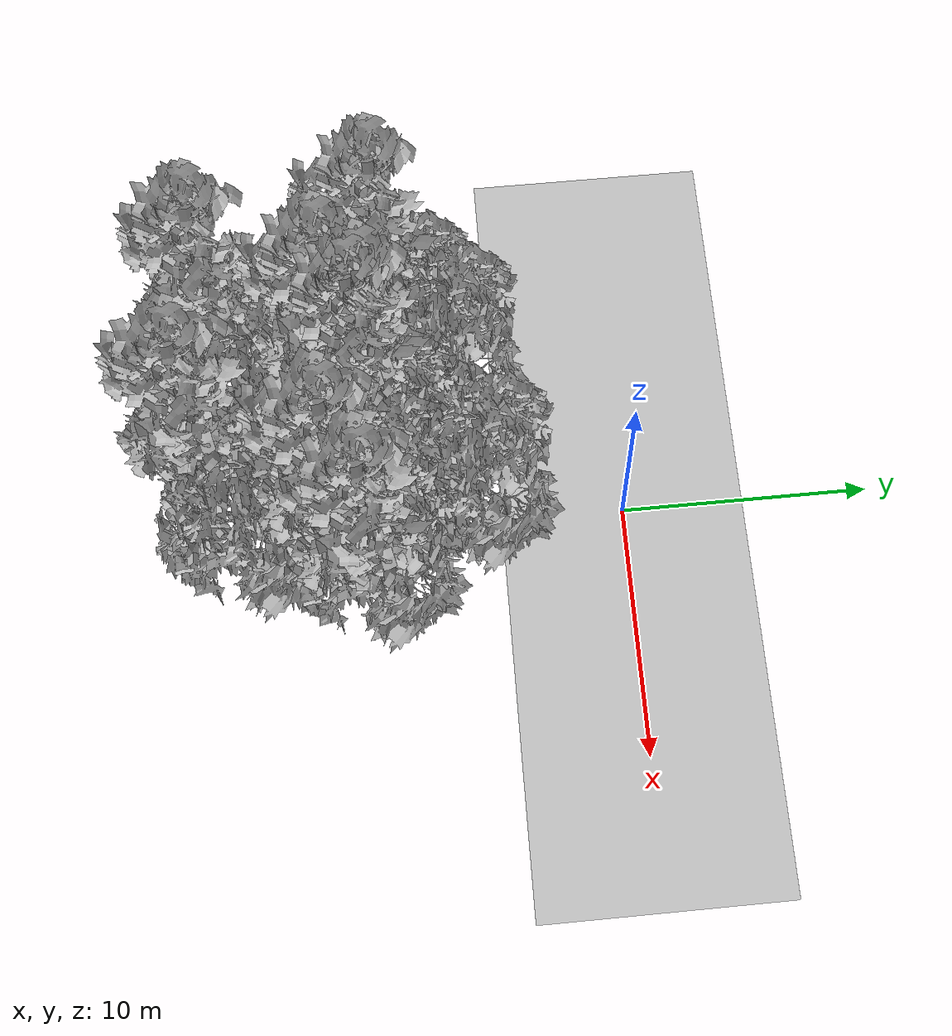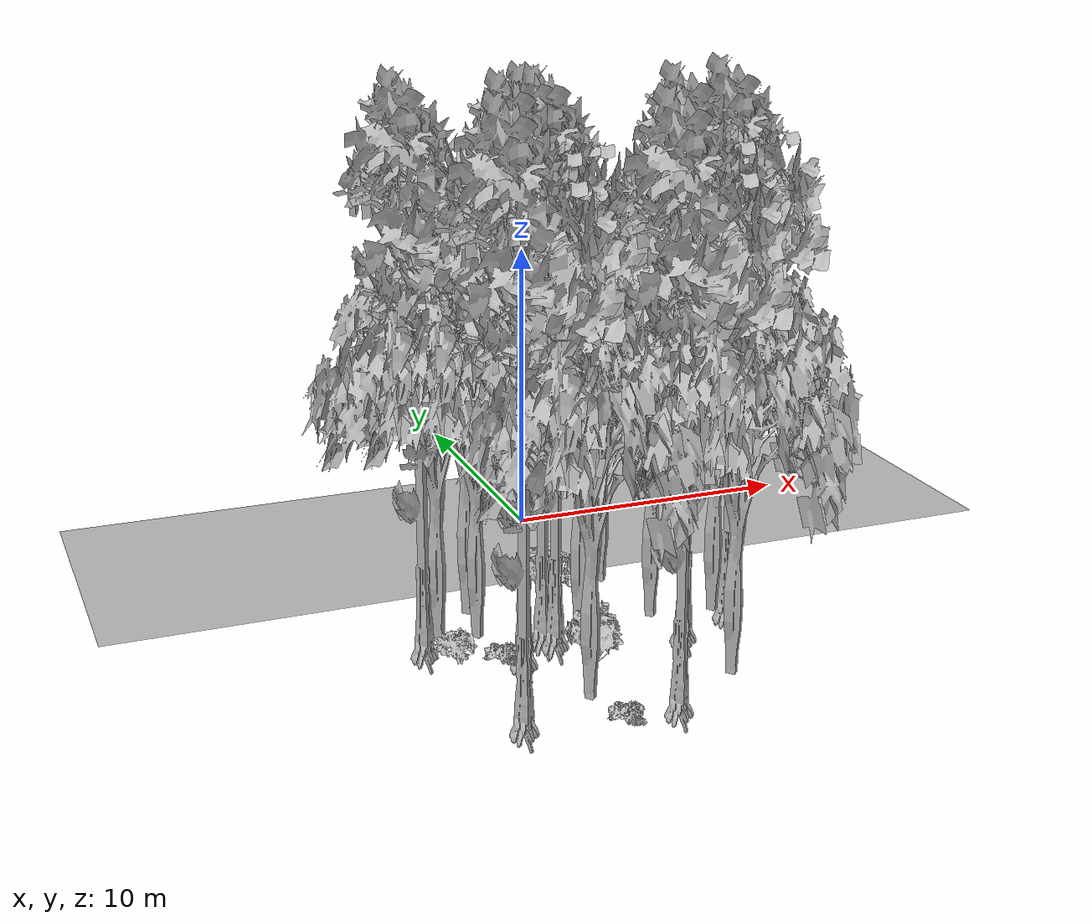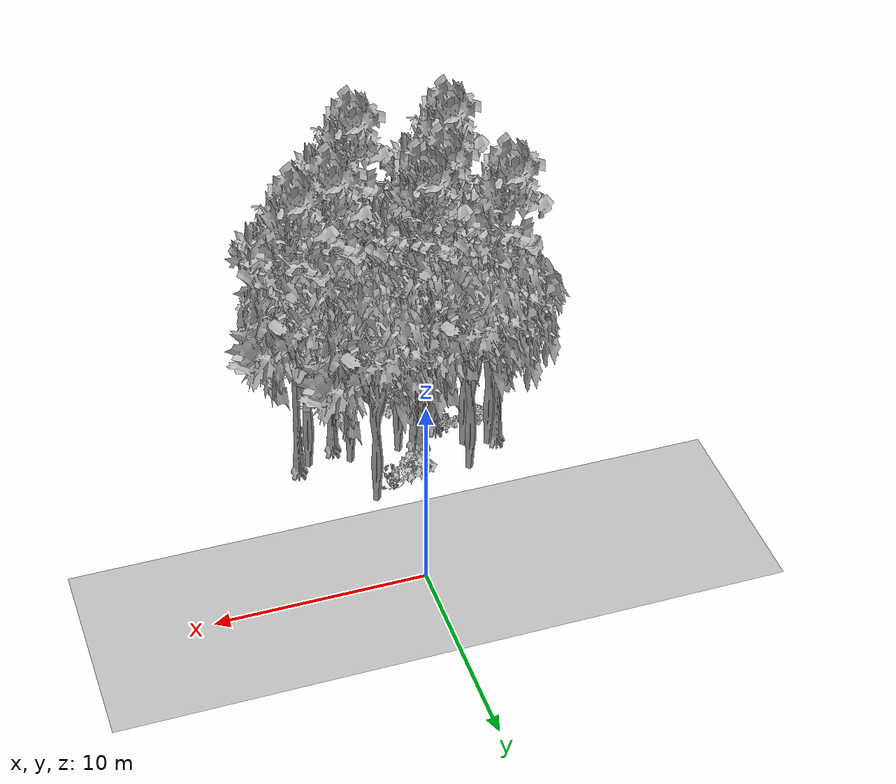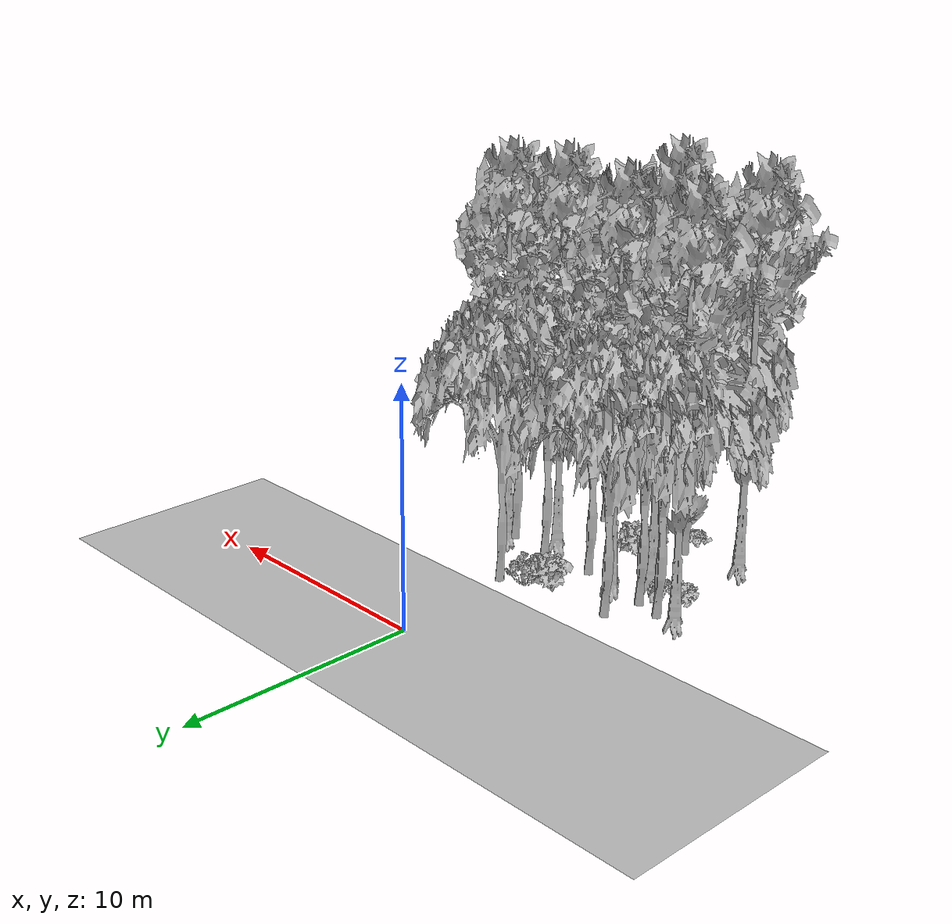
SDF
<sdf version="1.7">
 <world name="default">
  <model name="ground_plane">
   <static>1</static>
   <link name="link">
    <collision name="collision">
     <geometry><plane><normal>0 0 1</normal><size>100 100</size></plane></geometry>
     <surface><contact><ode><min_depth>0.01</min_depth><max_vel>0</max_vel></ode></contact></surface>
    </collision>
    <visual name="grass">
     <cast_shadows>0</cast_shadows>
     <geometry>
      <mesh>
       <scale>0.5814285714285714 0.18142857142857144 0.1</scale>
       <uri>file://grass_plane/meshes/grass_plane.dae</uri>
      </mesh>
     </geometry>
    </visual>
   </link>
  </model>
  <model name="Tree 73">
   <static>1</static>
   <pose>3.525173484678632 -9.07016390074514 0 1.57079 -0 0</pose>
   <link name="link">
    <collision name="collision">
     <geometry><mesh><scale>3.5 5 3.5</scale><uri>model://tree_9/meshes/tree_9.obj</uri></mesh></geometry>
    </collision>
    <visual name="visual">
     <geometry><mesh><scale>3.5 5 3.5</scale><uri>model://tree_9/meshes/tree_9.obj</uri></mesh></geometry>
    </visual>
   </link>
  </model>
  <model name="Tree 89">
   <static>1</static>
   <pose>-5.2365617005440654 -13.85587988193942 0 1.57079 -0 0</pose>
   <link name="link">
    <collision name="collision">
     <geometry><mesh><scale>3.5 5 3.5</scale><uri>model://tree_9/meshes/tree_9.obj</uri></mesh></geometry>
    </collision>
    <visual name="visual">
     <geometry><mesh><scale>3.5 5 3.5</scale><uri>model://tree_9/meshes/tree_9.obj</uri></mesh></geometry>
    </visual>
   </link>
  </model>
  <model name="Tree 148">
   <static>1</static>
   <pose>-6.367176145004244 -8.305977472083072 0 1.57079 -0 0</pose>
   <link name="link">
    <collision name="collision">
     <geometry><mesh><scale>3.5 5 3.5</scale><uri>model://tree_9/meshes/tree_9.obj</uri></mesh></geometry>
    </collision>
    <visual name="visual">
     <geometry><mesh><scale>3.5 5 3.5</scale><uri>model://tree_9/meshes/tree_9.obj</uri></mesh></geometry>
    </visual>
   </link>
  </model>
  <model name="Tree 152">
   <static>1</static>
   <pose>0.9007509179199573 -8.808213502089743 0 1.57079 -0 0</pose>
   <link name="link">
    <collision name="collision">
     <geometry><mesh><scale>3.5 5 3.5</scale><uri>model://tree_2/meshes/tree_2.obj</uri></mesh></geometry>
    </collision>
    <visual name="visual">
     <geometry><mesh><scale>3.5 5 3.5</scale><uri>model://tree_2/meshes/tree_2.obj</uri></mesh></geometry>
    </visual>
   </link>
  </model>
  <model name="Tree 157">
   <static>1</static>
   <pose>-3.0357020936606673 -13.215914265455734 0 1.57079 -0 0</pose>
   <link name="link">
    <collision name="collision">
     <geometry><mesh><scale>3.5 5 3.5</scale><uri>model://tree_2/meshes/tree_2.obj</uri></mesh></geometry>
    </collision>
    <visual name="visual">
     <geometry><mesh><scale>3.5 5 3.5</scale><uri>model://tree_2/meshes/tree_2.obj</uri></mesh></geometry>
    </visual>
   </link>
  </model>
  <model name="Tree 165">
   <static>1</static>
   <pose>-3.769764854737943 -10.018719545904528 0 1.57079 -0 0</pose>
   <link name="link">
    <collision name="collision">
     <geometry><mesh><scale>3.5 5 3.5</scale><uri>model://tree_9/meshes/tree_9.obj</uri></mesh></geometry>
    </collision>
    <visual name="visual">
     <geometry><mesh><scale>3.5 5 3.5</scale><uri>model://tree_9/meshes/tree_9.obj</uri></mesh></geometry>
    </visual>
   </link>
  </model>
  <model name="Tree 203">
   <static>1</static>
   <pose>1.4725150159026157 -13.26017907708439 0 1.57079 -0 0</pose>
   <link name="link">
    <collision name="collision">
     <geometry><mesh><scale>3.5 5 3.5</scale><uri>model://tree_2/meshes/tree_2.obj</uri></mesh></geometry>
    </collision>
    <visual name="visual">
     <geometry><mesh><scale>3.5 5 3.5</scale><uri>model://tree_2/meshes/tree_2.obj</uri></mesh></geometry>
    </visual>
   </link>
  </model>
  <model name="Tree 204">
   <static>1</static>
   <pose>-4.4517010652519815 -6.5604907552687735 0 1.57079 -0 0</pose>
   <link name="link">
    <collision name="collision">
     <geometry><mesh><scale>3.5 5 3.5</scale><uri>model://tree_2/meshes/tree_2.obj</uri></mesh></geometry>
    </collision>
    <visual name="visual">
     <geometry><mesh><scale>3.5 5 3.5</scale><uri>model://tree_2/meshes/tree_2.obj</uri></mesh></geometry>
    </visual>
   </link>
  </model>
  <model name="Tree 216">
   <static>1</static>
   <pose>1.5252636333690646 -10.082897858849279 0 1.57079 -0 0</pose>
   <link name="link">
    <collision name="collision">
     <geometry><mesh><scale>3.5 5 3.5</scale><uri>model://tree_9/meshes/tree_9.obj</uri></mesh></geometry>
    </collision>
    <visual name="visual">
     <geometry><mesh><scale>3.5 5 3.5</scale><uri>model://tree_9/meshes/tree_9.obj</uri></mesh></geometry>
    </visual>
   </link>
  </model>
  <model name="Tree 243">
   <static>1</static>
   <pose>-2.6807365542453283 -8.78948296507948 0 1.57079 -0 0</pose>
   <link name="link">
    <collision name="collision">
     <geometry><mesh><scale>3.5 5 3.5</scale><uri>model://tree_9/meshes/tree_9.obj</uri></mesh></geometry>
    </collision>
    <visual name="visual">
     <geometry><mesh><scale>3.5 5 3.5</scale><uri>model://tree_9/meshes/tree_9.obj</uri></mesh></geometry>
    </visual>
   </link>
  </model>
  <model name="Tree 280">
   <static>1</static>
   <pose>-5.8874259957438255 -7.990561201219685 0 1.57079 -0 0</pose>
   <link name="link">
    <collision name="collision">
     <geometry><mesh><scale>3.5 5 3.5</scale><uri>model://tree_2/meshes/tree_2.obj</uri></mesh></geometry>
    </collision>
    <visual name="visual">
     <geometry><mesh><scale>3.5 5 3.5</scale><uri>model://tree_2/meshes/tree_2.obj</uri></mesh></geometry>
    </visual>
   </link>
  </model>
  <model name="Tree 289">
   <static>1</static>
   <pose>-2.403657258983543 -9.150065847295041 0 1.57079 -0 0</pose>
   <link name="link">
    <collision name="collision">
     <geometry><mesh><scale>3.5 5 3.5</scale><uri>model://tree_9/meshes/tree_9.obj</uri></mesh></geometry>
    </collision>
    <visual name="visual">
     <geometry><mesh><scale>3.5 5 3.5</scale><uri>model://tree_9/meshes/tree_9.obj</uri></mesh></geometry>
    </visual>
   </link>
  </model>
  <model name="Tree 295">
   <static>1</static>
   <pose>2.925182876994832 -9.102520216630067 0 1.57079 -0 0</pose>
   <link name="link">
    <collision name="collision">
     <geometry><mesh><scale>3.5 5 3.5</scale><uri>model://tree_2/meshes/tree_2.obj</uri></mesh></geometry>
    </collision>
    <visual name="visual">
     <geometry><mesh><scale>3.5 5 3.5</scale><uri>model://tree_2/meshes/tree_2.obj</uri></mesh></geometry>
    </visual>
   </link>
  </model>
  <model name="Tree 297">
   <static>1</static>
   <pose>-4.730138908027342 -8.300848417205922 0 1.57079 -0 0</pose>
   <link name="link">
    <collision name="collision">
     <geometry><mesh><scale>3.5 5 3.5</scale><uri>model://tree_2/meshes/tree_2.obj</uri></mesh></geometry>
    </collision>
    <visual name="visual">
     <geometry><mesh><scale>3.5 5 3.5</scale><uri>model://tree_2/meshes/tree_2.obj</uri></mesh></geometry>
    </visual>
   </link>
  </model>
  <model name="Tree 301">
   <static>1</static>
   <pose>-0.6913680870575689 -14.372232650074302 0 1.57079 -0 0</pose>
   <link name="link">
    <collision name="collision">
     <geometry><mesh><scale>3.5 5 3.5</scale><uri>model://tree_9/meshes/tree_9.obj</uri></mesh></geometry>
    </collision>
    <visual name="visual">
     <geometry><mesh><scale>3.5 5 3.5</scale><uri>model://tree_9/meshes/tree_9.obj</uri></mesh></geometry>
    </visual>
   </link>
  </model>
  <model name="Tree 407">
   <static>1</static>
   <pose>0.4934394268128841 -5.74836060423711 0 1.57079 -0 0</pose>
   <link name="link">
    <collision name="collision">
     <geometry><mesh><scale>3.5 5 3.5</scale><uri>model://tree_2/meshes/tree_2.obj</uri></mesh></geometry>
    </collision>
    <visual name="visual">
     <geometry><mesh><scale>3.5 5 3.5</scale><uri>model://tree_2/meshes/tree_2.obj</uri></mesh></geometry>
    </visual>
   </link>
  </model>
  <model name="Tree 410">
   <static>1</static>
   <pose>-1.5503350219422316 -8.844464416466888 0 1.57079 -0 0</pose>
   <link name="link">
    <collision name="collision">
     <geometry><mesh><scale>3.5 5 3.5</scale><uri>model://tree_2/meshes/tree_2.obj</uri></mesh></geometry>
    </collision>
    <visual name="visual">
     <geometry><mesh><scale>3.5 5 3.5</scale><uri>model://tree_2/meshes/tree_2.obj</uri></mesh></geometry>
    </visual>
   </link>
  </model>
  <model name="Bush 51">
   <static>1</static>
   <pose>-0.3944037872421262 -6.122050280763901 0 1.57079 -0 0</pose>
   <link name="link">
    <collision name="collision">
     <geometry><mesh><scale>2 2 2</scale><uri>model://bush_4/meshes/bush_4.obj</uri></mesh></geometry>
     <surface><contact><collide_without_contact>false</collide_without_contact></contact></surface>
    </collision>
    <visual name="visual">
     <geometry><mesh><scale>2 2 2</scale><uri>model://bush_4/meshes/bush_4.obj</uri></mesh></geometry>
    </visual>
   </link>
  </model>
  <model name="Bush 55">
   <static>1</static>
   <pose>-1.5740524528424586 -6.538567532859007 0 1.57079 -0 0</pose>
   <link name="link">
    <collision name="collision">
     <geometry><mesh><scale>2 2 2</scale><uri>model://bush_1/meshes/bush_1.obj</uri></mesh></geometry>
     <surface><contact><collide_without_contact>false</collide_without_contact></contact></surface>
    </collision>
    <visual name="visual">
     <geometry><mesh><scale>2 2 2</scale><uri>model://bush_1/meshes/bush_1.obj</uri></mesh></geometry>
    </visual>
   </link>
  </model>
  <model name="Bush 63">
   <static>1</static>
   <pose>-5.756777505312968 -9.545606596423543 0 1.57079 -0 0</pose>
   <link name="link">
    <collision name="collision">
     <geometry><mesh><scale>2 2 2</scale><uri>model://bush_3/meshes/bush_3.obj</uri></mesh></geometry>
     <surface><contact><collide_without_contact>false</collide_without_contact></contact></surface>
    </collision>
    <visual name="visual">
     <geometry><mesh><scale>2 2 2</scale><uri>model://bush_3/meshes/bush_3.obj</uri></mesh></geometry>
    </visual>
   </link>
  </model>
  <model name="Bush 65">
   <static>1</static>
   <pose>-4.455229078797146 -9.966048159423638 0 1.57079 -0 0</pose>
   <link name="link">
    <collision name="collision">
     <geometry><mesh><scale>2 2 2</scale><uri>model://bush_2/meshes/bush_2.obj</uri></mesh></geometry>
     <surface><contact><collide_without_contact>false</collide_without_contact></contact></surface>
    </collision>
    <visual name="visual">
     <geometry><mesh><scale>2 2 2</scale><uri>model://bush_2/meshes/bush_2.obj</uri></mesh></geometry>
    </visual>
   </link>
  </model>
  <model name="Bush 197">
   <static>1</static>
   <pose>-2.473737900550283 -14.692203572880944 0 1.57079 -0 0</pose>
   <link name="link">
    <collision name="collision">
     <geometry><mesh><scale>2 2 2</scale><uri>model://bush_2/meshes/bush_2.obj</uri></mesh></geometry>
     <surface><contact><collide_without_contact>false</collide_without_contact></contact></surface>
    </collision>
    <visual name="visual">
     <geometry><mesh><scale>2 2 2</scale><uri>model://bush_2/meshes/bush_2.obj</uri></mesh></geometry>
    </visual>
   </link>
  </model>
  <model name="Bush 317">
   <static>1</static>
   <pose>-1.9999721253798342 -11.413374366694036 0 1.57079 -0 0</pose>
   <link name="link">
    <collision name="collision">
     <geometry><mesh><scale>2 2 2</scale><uri>model://bush_1/meshes/bush_1.obj</uri></mesh></geometry>
     <surface><contact><collide_without_contact>false</collide_without_contact></contact></surface>
    </collision>
    <visual name="visual">
     <geometry><mesh><scale>2 2 2</scale><uri>model://bush_1/meshes/bush_1.obj</uri></mesh></geometry>
    </visual>
   </link>
  </model>
 </world>
</sdf>
